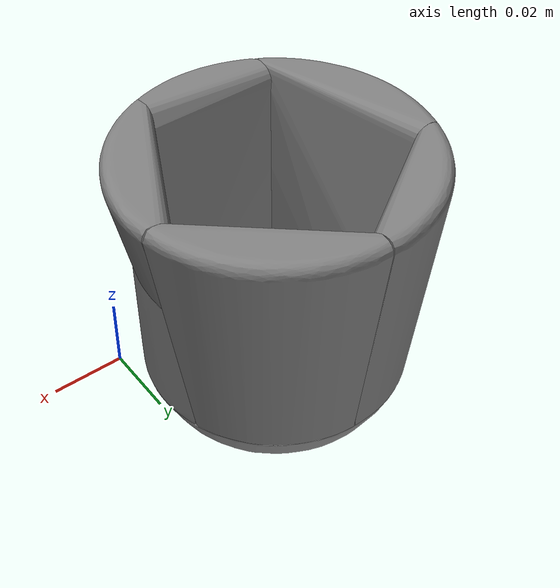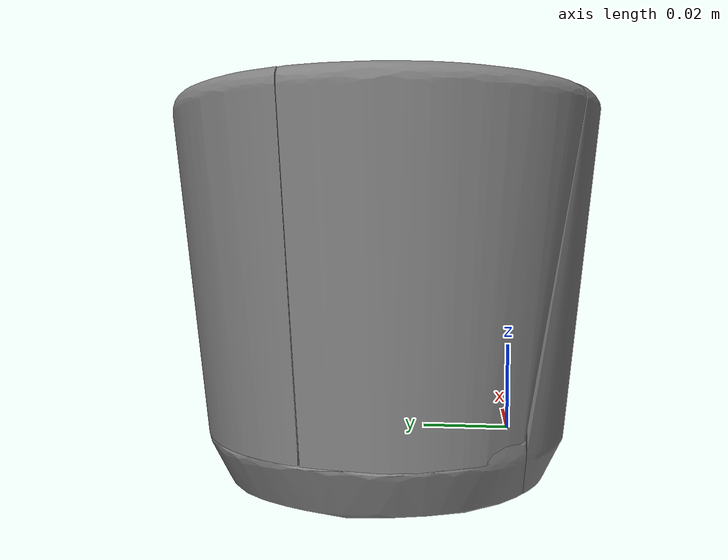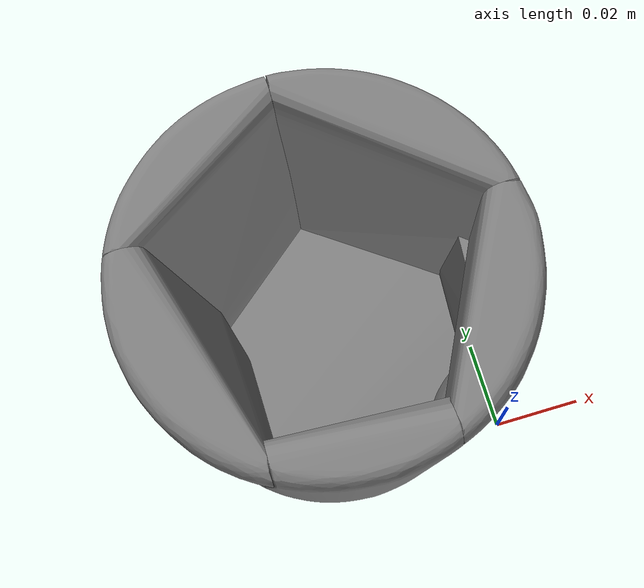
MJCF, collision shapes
<mujoco model="ycb_065-f_cups">
  <compiler meshdir="meshes" texturedir="meshes" angle="radian"/>
  <default>
    <default class="visual"><geom contype="0" conaffinity="0" group="2" density="0"/></default>
    <default class="collision"><geom group="3"/></default>
  </default>
  <asset>
    <texture name="ycb_065-f_cups_tex" type="2d" file="ycb_065-f_cups_texture.png"/>
    <material name="ycb_065-f_cups_mat" texture="ycb_065-f_cups_tex" specular="0.2" shininess="0.3"/>
    <mesh name="ycb_065-f_cups_visual" file="ycb_065-f_cups_visual.obj"/>
    <mesh name="ycb_065-f_cups_hull0" file="ycb_065-f_cups_hull0.obj"/>
    <mesh name="ycb_065-f_cups_hull1" file="ycb_065-f_cups_hull1.obj"/>
    <mesh name="ycb_065-f_cups_hull2" file="ycb_065-f_cups_hull2.obj"/>
    <mesh name="ycb_065-f_cups_hull3" file="ycb_065-f_cups_hull3.obj"/>
    <mesh name="ycb_065-f_cups_hull4" file="ycb_065-f_cups_hull4.obj"/>
    <mesh name="ycb_065-f_cups_hull5" file="ycb_065-f_cups_hull5.obj"/>
    <mesh name="ycb_065-f_cups_hull6" file="ycb_065-f_cups_hull6.obj"/>
    <mesh name="ycb_065-f_cups_hull7" file="ycb_065-f_cups_hull7.obj"/>
  </asset>
  <worldbody>
    <body name="object" pos="0 0 0">
      <freejoint name="object_free"/>
      <geom type="mesh" mesh="ycb_065-f_cups_visual" material="ycb_065-f_cups_mat" class="visual"/>
      <geom type="mesh" mesh="ycb_065-f_cups_hull0" class="collision"/>
      <geom type="mesh" mesh="ycb_065-f_cups_hull1" class="collision"/>
      <geom type="mesh" mesh="ycb_065-f_cups_hull2" class="collision"/>
      <geom type="mesh" mesh="ycb_065-f_cups_hull3" class="collision"/>
      <geom type="mesh" mesh="ycb_065-f_cups_hull4" class="collision"/>
      <geom type="mesh" mesh="ycb_065-f_cups_hull5" class="collision"/>
      <geom type="mesh" mesh="ycb_065-f_cups_hull6" class="collision"/>
      <geom type="mesh" mesh="ycb_065-f_cups_hull7" class="collision"/>
    </body>
  </worldbody>
</mujoco>
